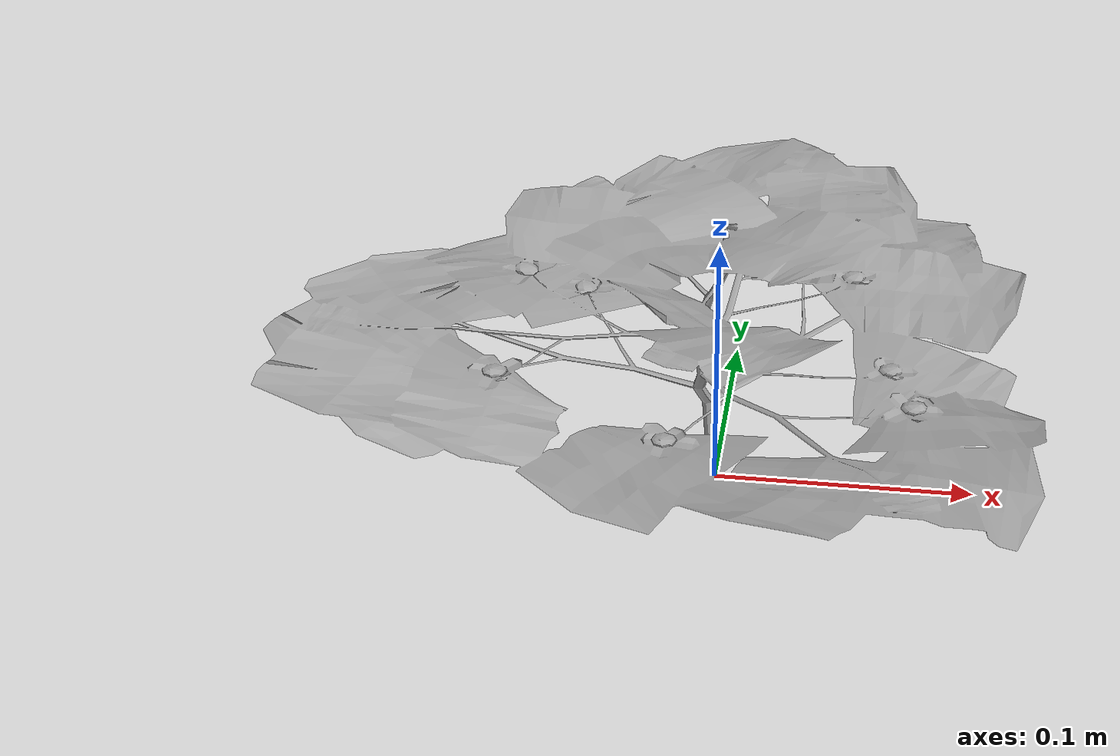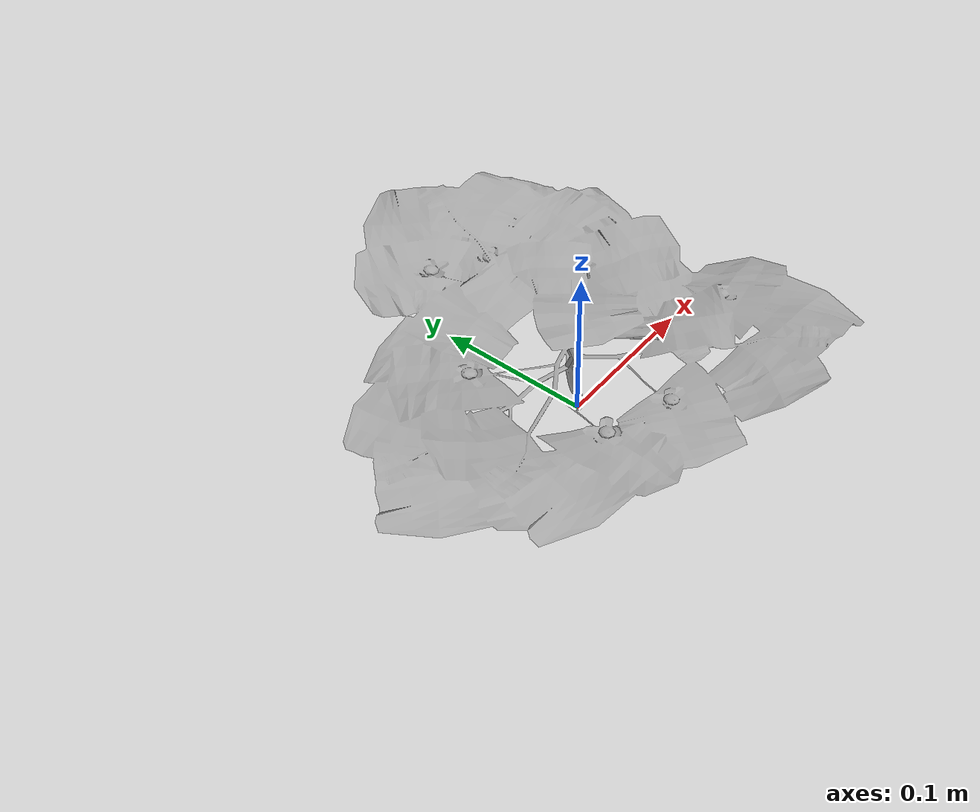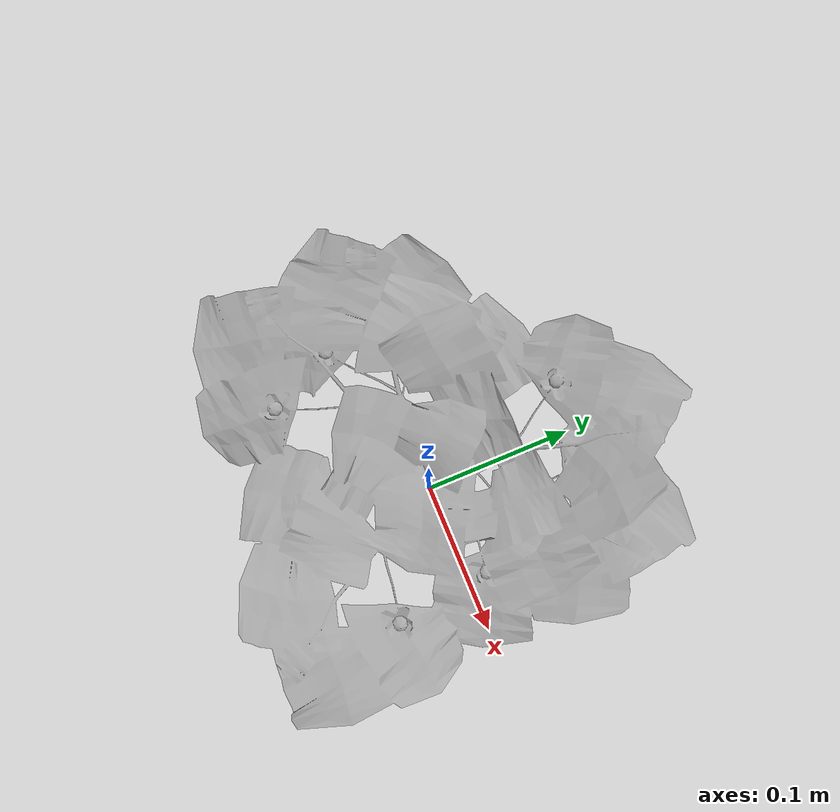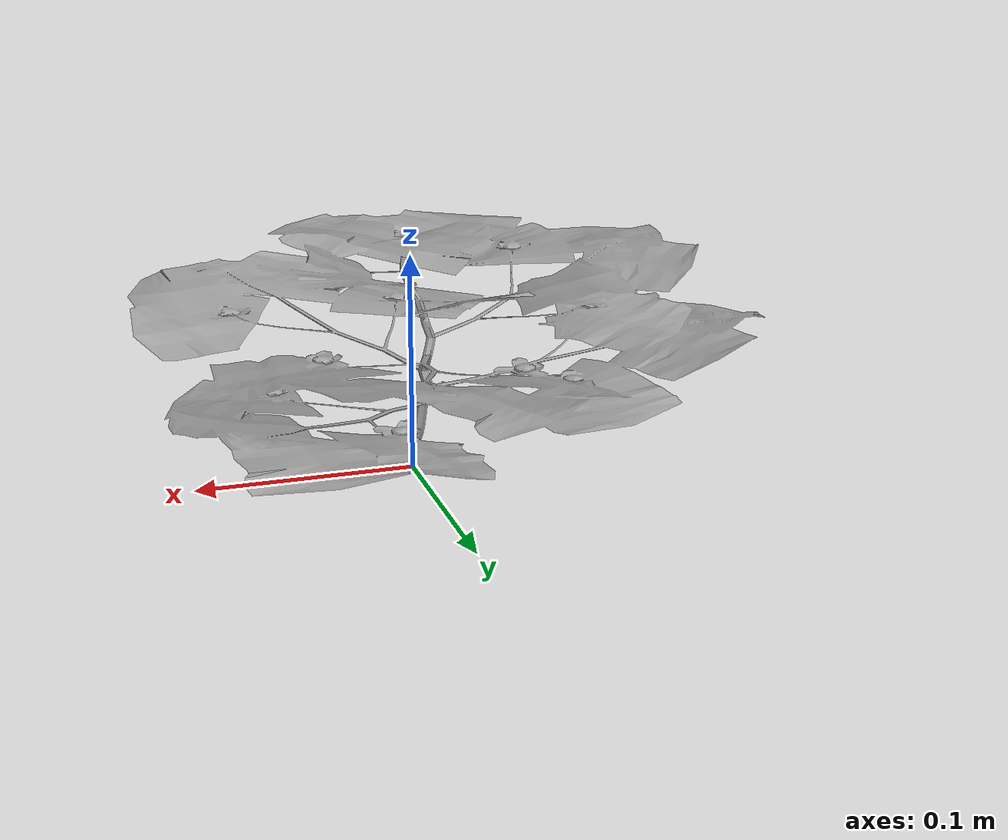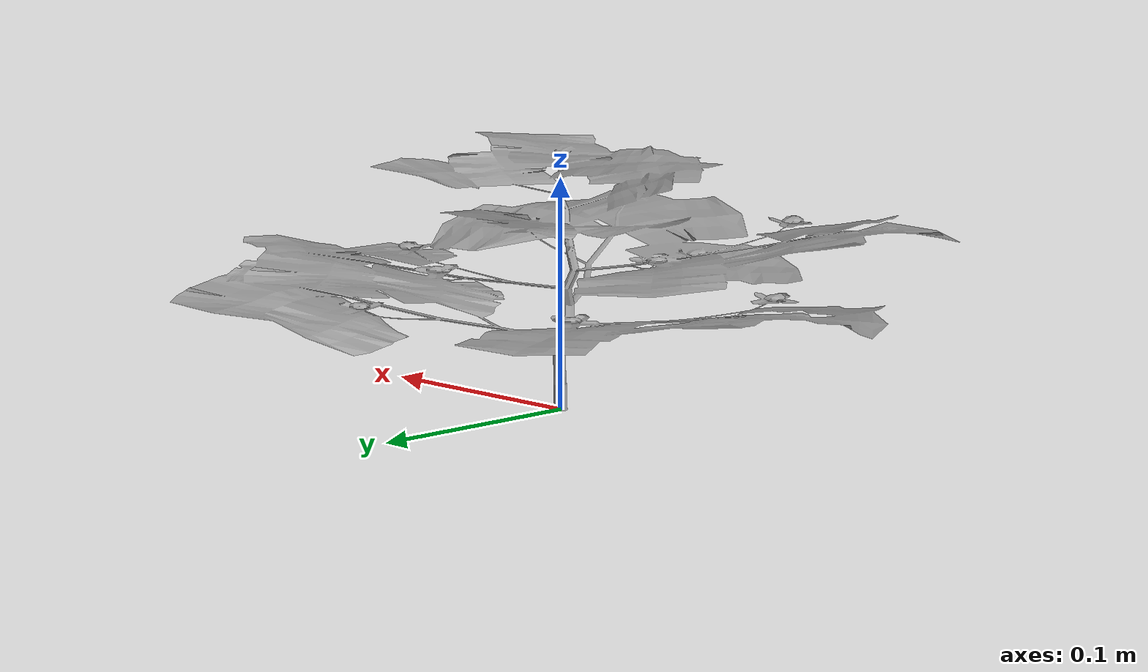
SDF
<?xml version="1.0"?>
<sdf version="1.6">
  <model name="cotton3">
    <static>true</static>
    <link name="link">
      <visual name="visual">
        <geometry>
          <mesh>
            <uri>model://cotton3/cotton3.dae</uri>
            <scale>1 1 0.3</scale>
          </mesh>
        </geometry>
      </visual>
    </link>
  </model>
</sdf>
